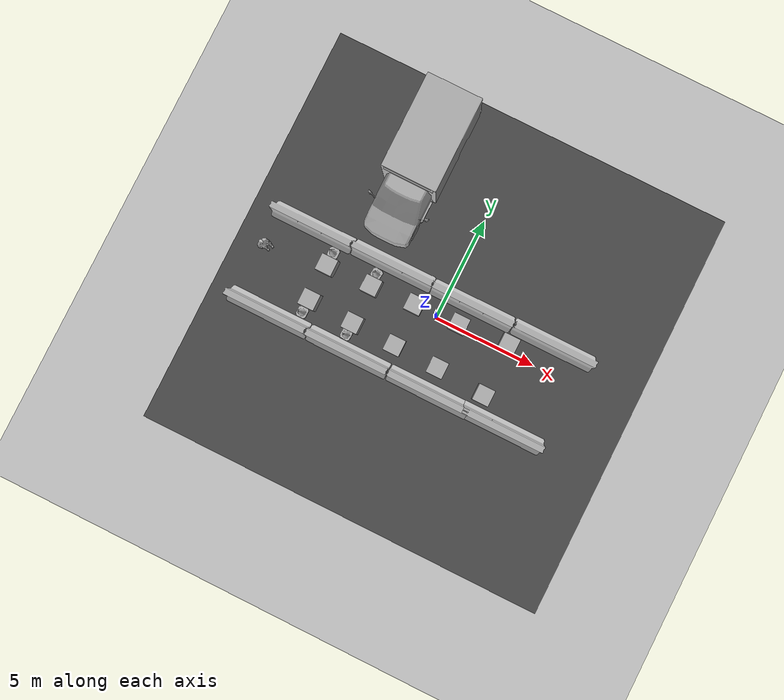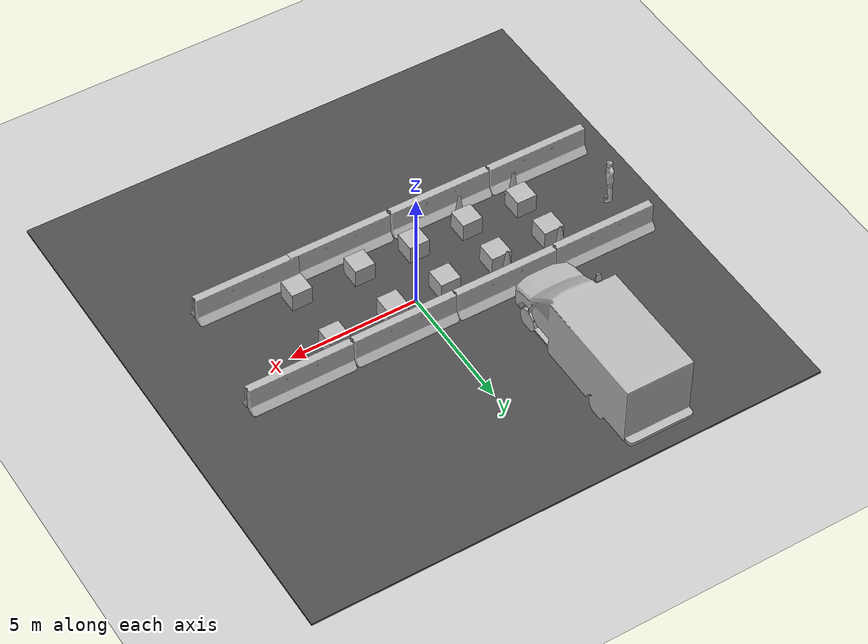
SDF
<sdf version="1.6">
 <world name="default">
  <light name="sun" type="directional">
   <pose>0 0 10 0 -0 0</pose>
   <diffuse>0.8 0.8 0.8 1</diffuse>
   <specular>0.2 0.2 0.2 1</specular>
   <attenuation>
    <range>1000</range>
    <constant>0.9</constant>
    <linear>0.01</linear>
    <quadratic>0.001</quadratic>
   </attenuation>
   <direction>-0.5 0.1 -0.9</direction>
  </light>
  <model name="ground_plane">
   <static>1</static>
   <link name="link">
    <collision name="collision">
     <geometry><plane><normal>0 0 1</normal><size>100 100</size></plane></geometry>
     <surface>
      <contact><collide_bitmask>65535</collide_bitmask></contact>
      <friction><ode><mu>100</mu><mu2>50</mu2></ode></friction>
     </surface>
    </collision>
    <visual name="visual">
     <cast_shadows>0</cast_shadows>
     <geometry><plane><normal>0 0 1</normal><size>100 100</size></plane></geometry>
     <material>
      <script><uri>file://media/materials/scripts/gazebo.material</uri><name>Gazebo/Grey</name></script>
     </material>
    </visual>
   </link>
  </model>
  <gravity>0 0 -9.8</gravity>
  <magnetic_field>6e-06 2.3e-05 -4.2e-05</magnetic_field>
  <atmosphere type="adiabatic"/>
  <physics name="default_physics" default="0" type="ode">
   <max_step_size>0.001</max_step_size>
   <real_time_factor>1</real_time_factor>
   <real_time_update_rate>1000</real_time_update_rate>
  </physics>
  <scene><ambient>0.4 0.4 0.4 1</ambient><background>0.7 0.7 0.7 1</background><shadows>1</shadows></scene>
  <audio><device>default</device></audio>
  <spherical_coordinates>
   <surface_model>EARTH_WGS84</surface_model>
   <latitude_deg>0</latitude_deg>
   <longitude_deg>0</longitude_deg>
   <elevation>0</elevation>
   <heading_deg>0</heading_deg>
  </spherical_coordinates>
  <model name="asphalt_plane">
   <static>1</static>
   <link name="link">
    <collision name="collision"><geometry><box><size>20 20 0.1</size></box></geometry></collision>
    <visual name="visual">
     <cast_shadows>0</cast_shadows>
     <geometry><box><size>20 20 0.1</size></box></geometry>
     <material>
      <script>
       <uri>model://asphalt_plane/materials/scripts</uri>
       <uri>model://asphalt_plane/materials/textures</uri>
       <name>vrc/asphalt</name>
      </script>
     </material>
    </visual>
   </link>
   <pose>0.001786 -0.029899 0 0 -0 0</pose>
  </model>
  <model name="jersey_barrier">
   <static>1</static>
   <link name="link">
    <visual name="visual">
     <geometry><mesh><uri>model://jersey_barrier/meshes/jersey_barrier.dae</uri></mesh></geometry>
    </visual>
    <collision name="upright">
     <pose>0 0 0.5715 0 -0 0</pose>
     <geometry><box><size>4.06542 0.3063 1.143</size></box></geometry>
    </collision>
    <collision name="base">
     <pose>0 0 0.032258 0 -0 0</pose>
     <geometry><box><size>4.06542 0.8107 0.064516</size></box></geometry>
    </collision>
    <collision name="base2">
     <pose>0 0 0.1 0 -0 0</pose>
     <geometry><box><size>4.06542 0.65 0.1</size></box></geometry>
    </collision>
    <collision name="base3">
     <pose>0 0 0.2 0 -0 0</pose>
     <geometry><box><size>4.06542 0.5 0.1</size></box></geometry>
    </collision>
    <collision name="left-angle">
     <pose>0 -0.224 0.2401 0.9 -0 0</pose>
     <geometry><box><size>4.06542 0.5 0.064516</size></box></geometry>
    </collision>
    <collision name="right-angle">
     <pose>0 0.224 0.2401 -0.9 0 0</pose>
     <geometry><box><size>4.06542 0.5 0.064516</size></box></geometry>
    </collision>
   </link>
   <pose>4.91846 -3.18426 0 0 -0 0</pose>
  </model>
  <model name="number5">
   <pose>-5.51831 -1.84792 0.4 0 -0 0</pose>
   <static>1</static>
   <link name="link">
    <visual name="visual">
     <geometry><mesh><uri>model://number1/meshes/number.dae</uri></mesh></geometry>
     <material>
      <script>
       <uri>model://number5/materials/scripts</uri>
       <uri>model://number5/materials/textures</uri>
       <name>Number/Five</name>
      </script>
     </material>
    </visual>
   </link>
  </model>
  <model name="number5_0">
   <pose>-5.51831 -0.096914 0.4 0 -0 0</pose>
   <static>1</static>
   <link name="link">
    <visual name="visual">
     <geometry><mesh><uri>model://number1/meshes/number.dae</uri></mesh></geometry>
     <material>
      <script>
       <uri>model://number5/materials/scripts</uri>
       <uri>model://number5/materials/textures</uri>
       <name>Number/Five</name>
      </script>
     </material>
    </visual>
   </link>
  </model>
  <model name="number4">
   <pose>-3.28775 -1.91991 0.4 0 -0 0</pose>
   <static>1</static>
   <link name="link">
    <visual name="visual">
     <geometry><mesh><uri>model://number1/meshes/number.dae</uri></mesh></geometry>
     <material>
      <script>
       <uri>model://number4/materials/scripts</uri>
       <uri>model://number4/materials/textures</uri>
       <name>Number/Four</name>
      </script>
     </material>
    </visual>
   </link>
  </model>
  <model name="number4_0">
   <pose>-3.29245 -0.036937 0.4 0 -0 0</pose>
   <static>1</static>
   <link name="link">
    <visual name="visual">
     <geometry><mesh><uri>model://number1/meshes/number.dae</uri></mesh></geometry>
     <material>
      <script>
       <uri>model://number4/materials/scripts</uri>
       <uri>model://number4/materials/textures</uri>
       <name>Number/Four</name>
      </script>
     </material>
    </visual>
   </link>
  </model>
  <model name="number3">
   <pose>-1.13277 -1.98264 0.4 0 -0 0</pose>
   <static>1</static>
   <link name="link">
    <visual name="visual">
     <geometry><mesh><uri>model://number1/meshes/number.dae</uri></mesh></geometry>
     <material>
      <script>
       <uri>model://number3/materials/scripts</uri>
       <uri>model://number3/materials/textures</uri>
       <name>Number/Three</name>
      </script>
     </material>
    </visual>
   </link>
  </model>
  <model name="number3_0">
   <pose>-1.13277 0.082219 0.4 0 -0 0</pose>
   <static>1</static>
   <link name="link">
    <visual name="visual">
     <geometry><mesh><uri>model://number1/meshes/number.dae</uri></mesh></geometry>
     <material>
      <script>
       <uri>model://number3/materials/scripts</uri>
       <uri>model://number3/materials/textures</uri>
       <name>Number/Three</name>
      </script>
     </material>
    </visual>
   </link>
  </model>
  <model name="number2">
   <pose>1.05994 -2.0248 0.4 0 -0 0</pose>
   <static>1</static>
   <link name="link">
    <visual name="visual">
     <geometry><mesh><uri>model://number1/meshes/number.dae</uri></mesh></geometry>
     <material>
      <script>
       <uri>model://number2/materials/scripts</uri>
       <uri>model://number2/materials/textures</uri>
       <name>Number/Two</name>
      </script>
     </material>
    </visual>
   </link>
  </model>
  <model name="number2_0">
   <pose>1.05994 0.186548 0.4 0 -0 0</pose>
   <static>1</static>
   <link name="link">
    <visual name="visual">
     <geometry><mesh><uri>model://number1/meshes/number.dae</uri></mesh></geometry>
     <material>
      <script>
       <uri>model://number2/materials/scripts</uri>
       <uri>model://number2/materials/textures</uri>
       <name>Number/Two</name>
      </script>
     </material>
    </visual>
   </link>
  </model>
  <model name="number1">
   <pose>3.48548 -2.19805 0.4 0 -0 0</pose>
   <static>1</static>
   <link name="link">
    <visual name="visual">
     <geometry><mesh><uri>model://number1/meshes/number.dae</uri></mesh></geometry>
     <material>
      <script>
       <uri>model://number1/materials/scripts</uri>
       <uri>model://number1/materials/textures</uri>
       <name>Number/One</name>
      </script>
     </material>
    </visual>
   </link>
  </model>
  <model name="number1_0">
   <pose>3.48548 0.377114 0.4 0 -0 0</pose>
   <static>1</static>
   <link name="link">
    <visual name="visual">
     <geometry><mesh><uri>model://number1/meshes/number.dae</uri></mesh></geometry>
     <material>
      <script>
       <uri>model://number1/materials/scripts</uri>
       <uri>model://number1/materials/textures</uri>
       <name>Number/One</name>
      </script>
     </material>
    </visual>
   </link>
  </model>
  <model name="jersey_barrier_0">
   <static>1</static>
   <link name="link">
    <visual name="visual">
     <geometry><mesh><uri>model://jersey_barrier/meshes/jersey_barrier.dae</uri></mesh></geometry>
    </visual>
    <collision name="upright">
     <pose>0 0 0.5715 0 -0 0</pose>
     <geometry><box><size>4.06542 0.3063 1.143</size></box></geometry>
    </collision>
    <collision name="base">
     <pose>0 0 0.032258 0 -0 0</pose>
     <geometry><box><size>4.06542 0.8107 0.064516</size></box></geometry>
    </collision>
    <collision name="base2">
     <pose>0 0 0.1 0 -0 0</pose>
     <geometry><box><size>4.06542 0.65 0.1</size></box></geometry>
    </collision>
    <collision name="base3">
     <pose>0 0 0.2 0 -0 0</pose>
     <geometry><box><size>4.06542 0.5 0.1</size></box></geometry>
    </collision>
    <collision name="left-angle">
     <pose>0 -0.224 0.2401 0.9 -0 0</pose>
     <geometry><box><size>4.06542 0.5 0.064516</size></box></geometry>
    </collision>
    <collision name="right-angle">
     <pose>0 0.224 0.2401 -0.9 0 0</pose>
     <geometry><box><size>4.06542 0.5 0.064516</size></box></geometry>
    </collision>
   </link>
   <pose>1.20199 -3.20362 0 0 -0 0</pose>
  </model>
  <model name="jersey_barrier_1">
   <static>1</static>
   <link name="link">
    <visual name="visual">
     <geometry><mesh><uri>model://jersey_barrier/meshes/jersey_barrier.dae</uri></mesh></geometry>
    </visual>
    <collision name="upright">
     <pose>0 0 0.5715 0 -0 0</pose>
     <geometry><box><size>4.06542 0.3063 1.143</size></box></geometry>
    </collision>
    <collision name="base">
     <pose>0 0 0.032258 0 -0 0</pose>
     <geometry><box><size>4.06542 0.8107 0.064516</size></box></geometry>
    </collision>
    <collision name="base2">
     <pose>0 0 0.1 0 -0 0</pose>
     <geometry><box><size>4.06542 0.65 0.1</size></box></geometry>
    </collision>
    <collision name="base3">
     <pose>0 0 0.2 0 -0 0</pose>
     <geometry><box><size>4.06542 0.5 0.1</size></box></geometry>
    </collision>
    <collision name="left-angle">
     <pose>0 -0.224 0.2401 0.9 -0 0</pose>
     <geometry><box><size>4.06542 0.5 0.064516</size></box></geometry>
    </collision>
    <collision name="right-angle">
     <pose>0 0.224 0.2401 -0.9 0 0</pose>
     <geometry><box><size>4.06542 0.5 0.064516</size></box></geometry>
    </collision>
   </link>
   <pose>-2.91912 -3.21025 0 0 -0 0</pose>
  </model>
  <model name="jersey_barrier_2">
   <static>1</static>
   <link name="link">
    <visual name="visual">
     <geometry><mesh><uri>model://jersey_barrier/meshes/jersey_barrier.dae</uri></mesh></geometry>
    </visual>
    <collision name="upright">
     <pose>0 0 0.5715 0 -0 0</pose>
     <geometry><box><size>4.06542 0.3063 1.143</size></box></geometry>
    </collision>
    <collision name="base">
     <pose>0 0 0.032258 0 -0 0</pose>
     <geometry><box><size>4.06542 0.8107 0.064516</size></box></geometry>
    </collision>
    <collision name="base2">
     <pose>0 0 0.1 0 -0 0</pose>
     <geometry><box><size>4.06542 0.65 0.1</size></box></geometry>
    </collision>
    <collision name="base3">
     <pose>0 0 0.2 0 -0 0</pose>
     <geometry><box><size>4.06542 0.5 0.1</size></box></geometry>
    </collision>
    <collision name="left-angle">
     <pose>0 -0.224 0.2401 0.9 -0 0</pose>
     <geometry><box><size>4.06542 0.5 0.064516</size></box></geometry>
    </collision>
    <collision name="right-angle">
     <pose>0 0.224 0.2401 -0.9 0 0</pose>
     <geometry><box><size>4.06542 0.5 0.064516</size></box></geometry>
    </collision>
   </link>
   <pose>-7.01538 -3.20081 0 0 -0 0</pose>
  </model>
  <model name="jersey_barrier_3">
   <static>1</static>
   <link name="link">
    <visual name="visual">
     <geometry><mesh><uri>model://jersey_barrier/meshes/jersey_barrier.dae</uri></mesh></geometry>
    </visual>
    <collision name="upright">
     <pose>0 0 0.5715 0 -0 0</pose>
     <geometry><box><size>4.06542 0.3063 1.143</size></box></geometry>
    </collision>
    <collision name="base">
     <pose>0 0 0.032258 0 -0 0</pose>
     <geometry><box><size>4.06542 0.8107 0.064516</size></box></geometry>
    </collision>
    <collision name="base2">
     <pose>0 0 0.1 0 -0 0</pose>
     <geometry><box><size>4.06542 0.65 0.1</size></box></geometry>
    </collision>
    <collision name="base3">
     <pose>0 0 0.2 0 -0 0</pose>
     <geometry><box><size>4.06542 0.5 0.1</size></box></geometry>
    </collision>
    <collision name="left-angle">
     <pose>0 -0.224 0.2401 0.9 -0 0</pose>
     <geometry><box><size>4.06542 0.5 0.064516</size></box></geometry>
    </collision>
    <collision name="right-angle">
     <pose>0 0.224 0.2401 -0.9 0 0</pose>
     <geometry><box><size>4.06542 0.5 0.064516</size></box></geometry>
    </collision>
   </link>
   <pose>5.36135 1.26457 0 0 -0 0</pose>
  </model>
  <model name="jersey_barrier_4">
   <static>1</static>
   <link name="link">
    <visual name="visual">
     <geometry><mesh><uri>model://jersey_barrier/meshes/jersey_barrier.dae</uri></mesh></geometry>
    </visual>
    <collision name="upright">
     <pose>0 0 0.5715 0 -0 0</pose>
     <geometry><box><size>4.06542 0.3063 1.143</size></box></geometry>
    </collision>
    <collision name="base">
     <pose>0 0 0.032258 0 -0 0</pose>
     <geometry><box><size>4.06542 0.8107 0.064516</size></box></geometry>
    </collision>
    <collision name="base2">
     <pose>0 0 0.1 0 -0 0</pose>
     <geometry><box><size>4.06542 0.65 0.1</size></box></geometry>
    </collision>
    <collision name="base3">
     <pose>0 0 0.2 0 -0 0</pose>
     <geometry><box><size>4.06542 0.5 0.1</size></box></geometry>
    </collision>
    <collision name="left-angle">
     <pose>0 -0.224 0.2401 0.9 -0 0</pose>
     <geometry><box><size>4.06542 0.5 0.064516</size></box></geometry>
    </collision>
    <collision name="right-angle">
     <pose>0 0.224 0.2401 -0.9 0 0</pose>
     <geometry><box><size>4.06542 0.5 0.064516</size></box></geometry>
    </collision>
   </link>
   <pose>1.24279 1.23715 0 0 -0 0</pose>
  </model>
  <model name="jersey_barrier_5">
   <static>1</static>
   <link name="link">
    <visual name="visual">
     <geometry><mesh><uri>model://jersey_barrier/meshes/jersey_barrier.dae</uri></mesh></geometry>
    </visual>
    <collision name="upright">
     <pose>0 0 0.5715 0 -0 0</pose>
     <geometry><box><size>4.06542 0.3063 1.143</size></box></geometry>
    </collision>
    <collision name="base">
     <pose>0 0 0.032258 0 -0 0</pose>
     <geometry><box><size>4.06542 0.8107 0.064516</size></box></geometry>
    </collision>
    <collision name="base2">
     <pose>0 0 0.1 0 -0 0</pose>
     <geometry><box><size>4.06542 0.65 0.1</size></box></geometry>
    </collision>
    <collision name="base3">
     <pose>0 0 0.2 0 -0 0</pose>
     <geometry><box><size>4.06542 0.5 0.1</size></box></geometry>
    </collision>
    <collision name="left-angle">
     <pose>0 -0.224 0.2401 0.9 -0 0</pose>
     <geometry><box><size>4.06542 0.5 0.064516</size></box></geometry>
    </collision>
    <collision name="right-angle">
     <pose>0 0.224 0.2401 -0.9 0 0</pose>
     <geometry><box><size>4.06542 0.5 0.064516</size></box></geometry>
    </collision>
   </link>
   <pose>-2.84186 1.2542 0 0 -0 0</pose>
  </model>
  <model name="jersey_barrier_6">
   <static>1</static>
   <link name="link">
    <visual name="visual">
     <geometry><mesh><uri>model://jersey_barrier/meshes/jersey_barrier.dae</uri></mesh></geometry>
    </visual>
    <collision name="upright">
     <pose>0 0 0.5715 0 -0 0</pose>
     <geometry><box><size>4.06542 0.3063 1.143</size></box></geometry>
    </collision>
    <collision name="base">
     <pose>0 0 0.032258 0 -0 0</pose>
     <geometry><box><size>4.06542 0.8107 0.064516</size></box></geometry>
    </collision>
    <collision name="base2">
     <pose>0 0 0.1 0 -0 0</pose>
     <geometry><box><size>4.06542 0.65 0.1</size></box></geometry>
    </collision>
    <collision name="base3">
     <pose>0 0 0.2 0 -0 0</pose>
     <geometry><box><size>4.06542 0.5 0.1</size></box></geometry>
    </collision>
    <collision name="left-angle">
     <pose>0 -0.224 0.2401 0.9 -0 0</pose>
     <geometry><box><size>4.06542 0.5 0.064516</size></box></geometry>
    </collision>
    <collision name="right-angle">
     <pose>0 0.224 0.2401 -0.9 0 0</pose>
     <geometry><box><size>4.06542 0.5 0.064516</size></box></geometry>
    </collision>
   </link>
   <pose>-6.94476 1.22395 0 0 -0 0</pose>
  </model>
  <model name="person_standing">
   <link name="link">
    <inertial>
     <pose>0 -0.1 0.95 0 -0 0</pose>
     <mass>80</mass>
     <inertia><ixx>24.88</ixx><ixy>0</ixy><ixz>0</ixz><iyy>25.73</iyy><iyz>0</iyz><izz>2.48</izz></inertia>
    </inertial>
    <collision name="bottom">
     <pose>0 -0.1 0.01 0 -0 0</pose>
     <geometry><box><size>0.5 0.35 0.02</size></box></geometry>
    </collision>
    <collision name="person">
     <pose>0 0 0.02 0.04 -0 0</pose>
     <geometry><mesh><uri>model://person_standing/meshes/standing.dae</uri></mesh></geometry>
    </collision>
    <visual name="visual">
     <pose>0 0 0.02 0.04 -0 0</pose>
     <geometry><mesh><uri>model://person_standing/meshes/standing.dae</uri></mesh></geometry>
    </visual>
   </link>
   <pose>-8.45769 -0.479311 0.05 1e-06 2e-06 1.06891</pose>
  </model>
  <model name="ambulance">
   <static>1</static>
   <link name="link">
    <collision name="collision">
     <geometry>
      <mesh><scale>0.0254 0.0254 0.0254</scale><uri>model://ambulance/meshes/ambulance.obj</uri></mesh>
     </geometry>
    </collision>
    <visual name="visual">
     <geometry>
      <mesh><scale>0.0254 0.0254 0.0254</scale><uri>model://ambulance/meshes/ambulance.obj</uri></mesh>
     </geometry>
    </visual>
   </link>
   <pose>-3.69256 5.89744 0 0 -0 0</pose>
  </model>
  <model name="Construction Cone">
   <link name="link">
    <collision name="collision">
     <geometry>
      <mesh><scale>10 10 10</scale><uri>model://construction_cone/meshes/construction_cone.dae</uri></mesh>
     </geometry>
    </collision>
    <visual name="visual">
     <geometry>
      <mesh><scale>10 10 10</scale><uri>model://construction_cone/meshes/construction_cone.dae</uri></mesh>
     </geometry>
    </visual>
    <inertial>
     <inertia><ixx>1</ixx><ixy>0</ixy><ixz>0</ixz><iyy>1</iyy><iyz>0</iyz><izz>1</izz></inertia>
     <mass>1</mass>
    </inertial>
   </link>
   <pose>-5.64067 -2.52913 0.05 0 -1e-06 0</pose>
  </model>
  <model name="Construction Cone_0">
   <link name="link">
    <collision name="collision">
     <geometry>
      <mesh><scale>10 10 10</scale><uri>model://construction_cone/meshes/construction_cone.dae</uri></mesh>
     </geometry>
    </collision>
    <visual name="visual">
     <geometry>
      <mesh><scale>10 10 10</scale><uri>model://construction_cone/meshes/construction_cone.dae</uri></mesh>
     </geometry>
    </visual>
    <inertial>
     <inertia><ixx>1</ixx><ixy>0</ixy><ixz>0</ixz><iyy>1</iyy><iyz>0</iyz><izz>1</izz></inertia>
     <mass>1</mass>
    </inertial>
   </link>
   <pose>-5.59407 0.554397 0.049999 -3e-06 -0 -0</pose>
  </model>
  <model name="Construction Cone_1">
   <link name="link">
    <collision name="collision">
     <geometry>
      <mesh><scale>10 10 10</scale><uri>model://construction_cone/meshes/construction_cone.dae</uri></mesh>
     </geometry>
    </collision>
    <visual name="visual">
     <geometry>
      <mesh><scale>10 10 10</scale><uri>model://construction_cone/meshes/construction_cone.dae</uri></mesh>
     </geometry>
    </visual>
    <inertial>
     <inertia><ixx>1</ixx><ixy>0</ixy><ixz>0</ixz><iyy>1</iyy><iyz>0</iyz><izz>1</izz></inertia>
     <mass>1</mass>
    </inertial>
   </link>
   <pose>-3.37566 0.580786 0.05 0 -1e-06 -0.105763</pose>
  </model>
  <model name="Construction Cone_2">
   <link name="link">
    <collision name="collision">
     <geometry>
      <mesh><scale>10 10 10</scale><uri>model://construction_cone/meshes/construction_cone.dae</uri></mesh>
     </geometry>
    </collision>
    <visual name="visual">
     <geometry>
      <mesh><scale>10 10 10</scale><uri>model://construction_cone/meshes/construction_cone.dae</uri></mesh>
     </geometry>
    </visual>
    <inertial>
     <inertia><ixx>1</ixx><ixy>0</ixy><ixz>0</ixz><iyy>1</iyy><iyz>0</iyz><izz>1</izz></inertia>
     <mass>1</mass>
    </inertial>
   </link>
   <pose>-3.36616 -2.5394 0.05 0 -0 -0.055504</pose>
  </model>
 </world>
</sdf>
